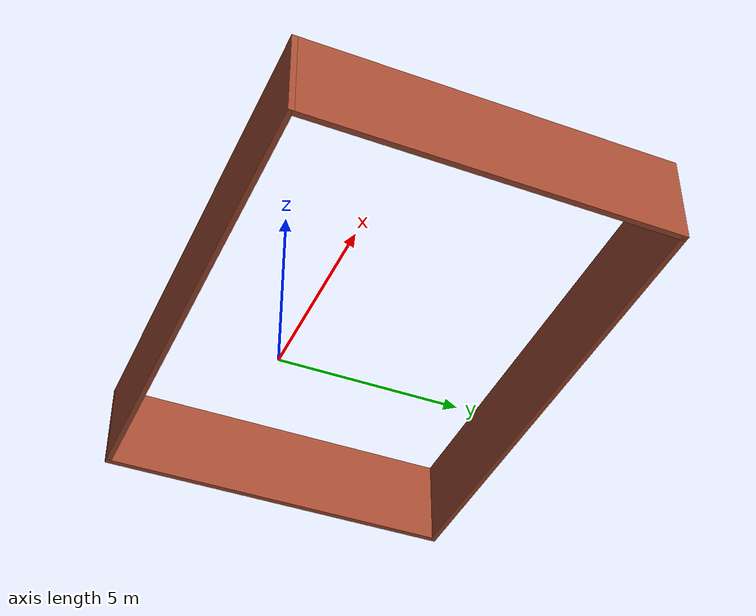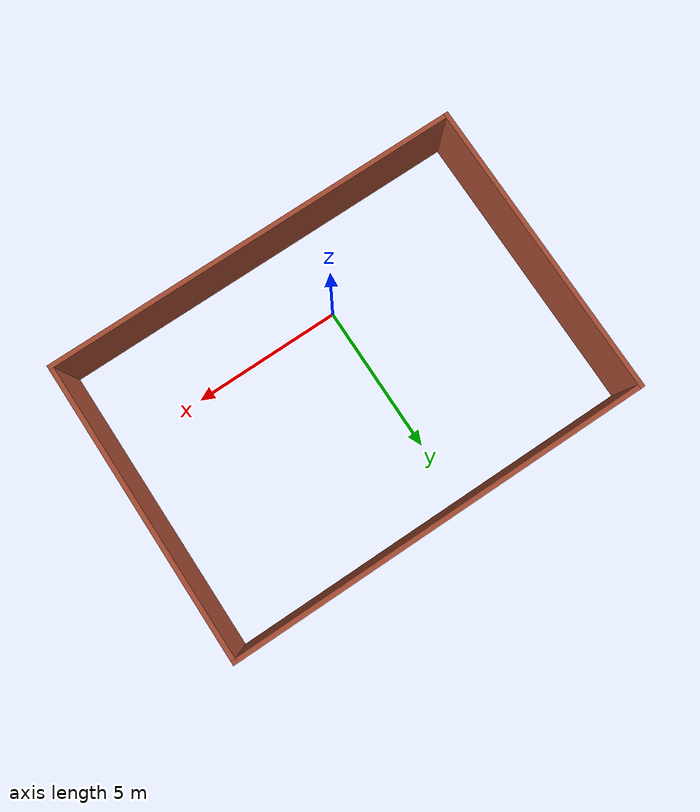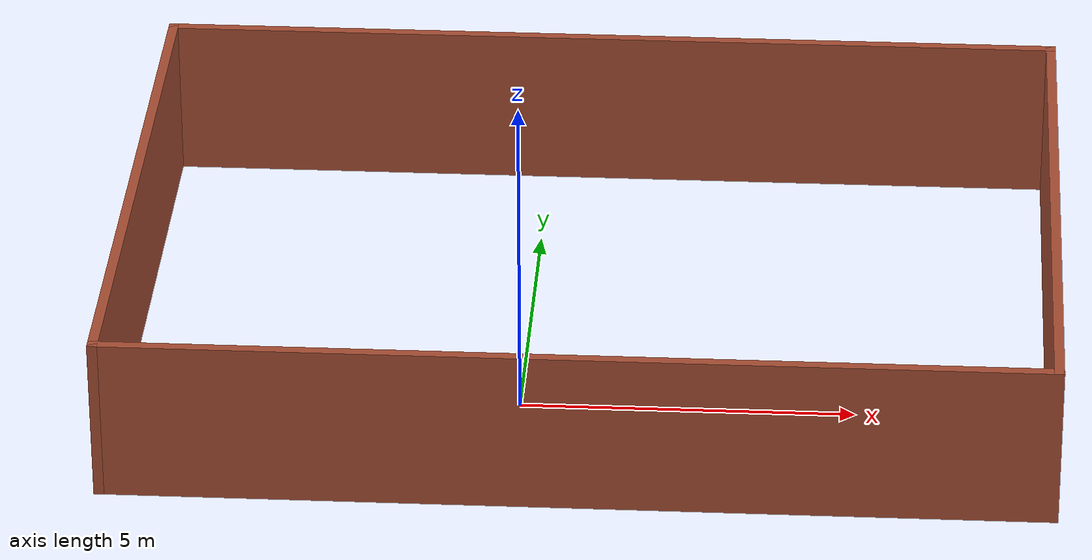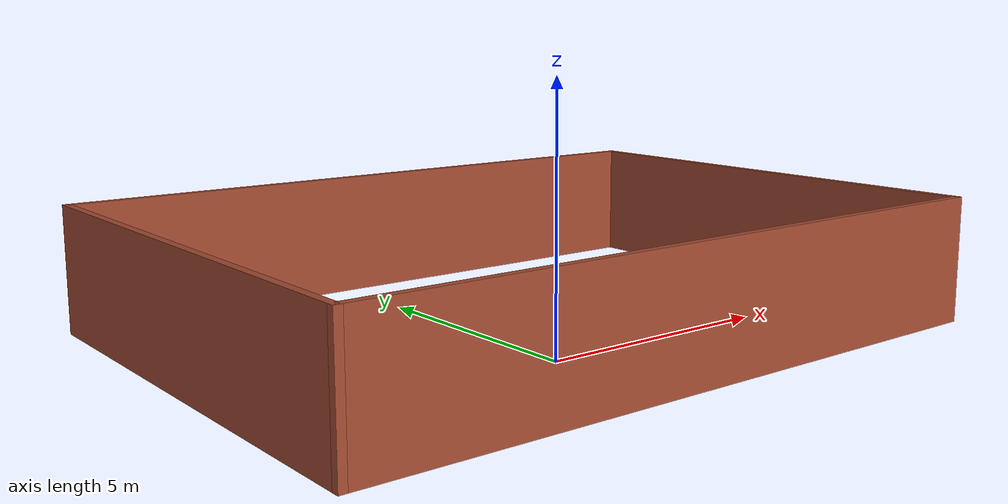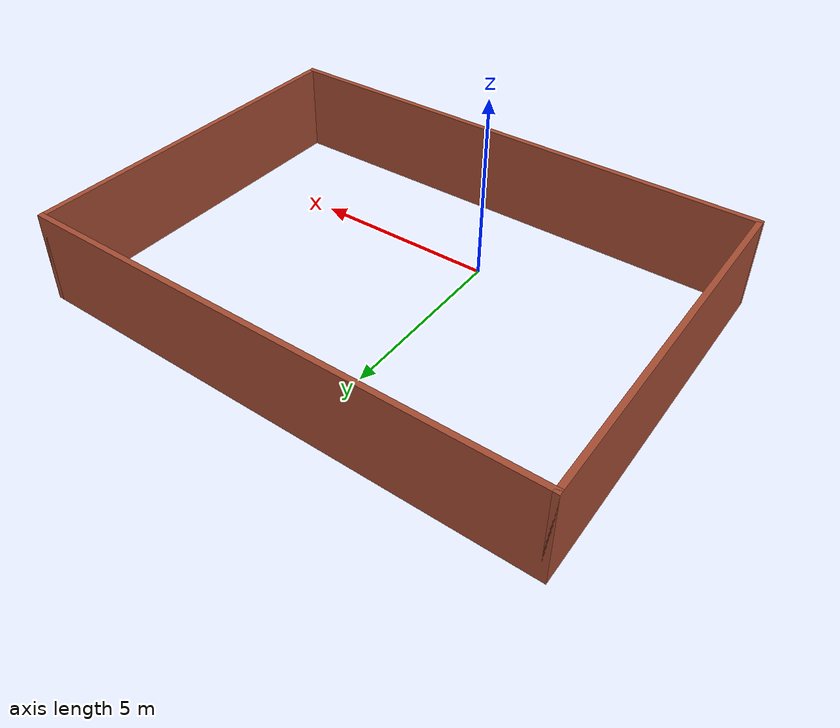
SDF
<?xml version='1.0'?>
<sdf version='1.7'>
  <model name='Wall'>
    <pose>0.97096 2.17982 0 0 -0 0</pose>
    <link name='Wall_16'>
      <collision name='Wall_16_Collision'>
        <geometry>
          <box>
            <size>14 0.15 2.5</size>
          </box>
        </geometry>
        <pose>0 0 1.25 0 -0 0</pose>
      </collision>
      <visual name='Wall_16_Visual'>
        <pose>0 0 1.25 0 -0 0</pose>
        <geometry>
          <box>
            <size>14 0.15 2.5</size>
          </box>
        </geometry>
        <material>
          <script>
            <uri>file://media/materials/scripts/gazebo.material</uri>
            <name>Gazebo/Bricks</name>
          </script>
          <ambient>1 1 1 1</ambient>
        </material>
        <meta>
          <layer>0</layer>
        </meta>
      </visual>
      <pose>-0 4.925 0 0 -0 0</pose>
    </link>
    <link name='Wall_17'>
      <collision name='Wall_17_Collision'>
        <geometry>
          <box>
            <size>10 0.15 2.5</size>
          </box>
        </geometry>
        <pose>0 0 1.25 0 -0 0</pose>
      </collision>
      <visual name='Wall_17_Visual'>
        <pose>0 0 1.25 0 -0 0</pose>
        <geometry>
          <box>
            <size>10 0.15 2.5</size>
          </box>
        </geometry>
        <material>
          <script>
            <uri>file://media/materials/scripts/gazebo.material</uri>
            <name>Gazebo/Bricks</name>
          </script>
          <ambient>1 1 1 1</ambient>
        </material>
        <meta>
          <layer>0</layer>
        </meta>
      </visual>
      <pose>6.925 0 0 0 -0 -1.5708</pose>
    </link>
    <link name='Wall_18'>
      <collision name='Wall_18_Collision'>
        <geometry>
          <box>
            <size>14 0.15 2.5</size>
          </box>
        </geometry>
        <pose>0 0 1.25 0 -0 0</pose>
      </collision>
      <visual name='Wall_18_Visual'>
        <pose>0 0 1.25 0 -0 0</pose>
        <geometry>
          <box>
            <size>14 0.15 2.5</size>
          </box>
        </geometry>
        <material>
          <script>
            <uri>file://media/materials/scripts/gazebo.material</uri>
            <name>Gazebo/Bricks</name>
          </script>
          <ambient>1 1 1 1</ambient>
        </material>
        <meta>
          <layer>0</layer>
        </meta>
      </visual>
      <pose>-0 -4.925 0 0 -0 3.14159</pose>
    </link>
    <link name='Wall_19'>
      <collision name='Wall_19_Collision'>
        <geometry>
          <box>
            <size>10 0.15 2.5</size>
          </box>
        </geometry>
        <pose>0 0 1.25 0 -0 0</pose>
      </collision>
      <visual name='Wall_19_Visual'>
        <pose>0 0 1.25 0 -0 0</pose>
        <geometry>
          <box>
            <size>10 0.15 2.5</size>
          </box>
        </geometry>
        <material>
          <script>
            <uri>file://media/materials/scripts/gazebo.material</uri>
            <name>Gazebo/Bricks</name>
          </script>
          <ambient>1 1 1 1</ambient>
        </material>
        <meta>
          <layer>0</layer>
        </meta>
      </visual>
      <pose>-6.925 0 0 0 -0 1.5708</pose>
    </link>
    <static>1</static>
  </model>
</sdf>
